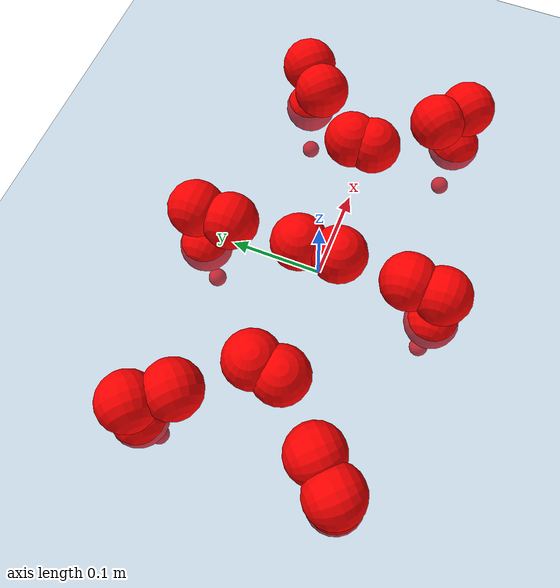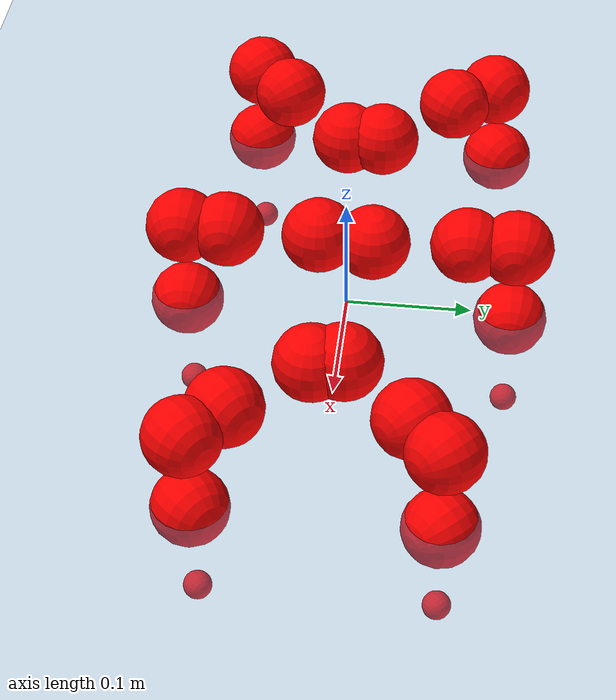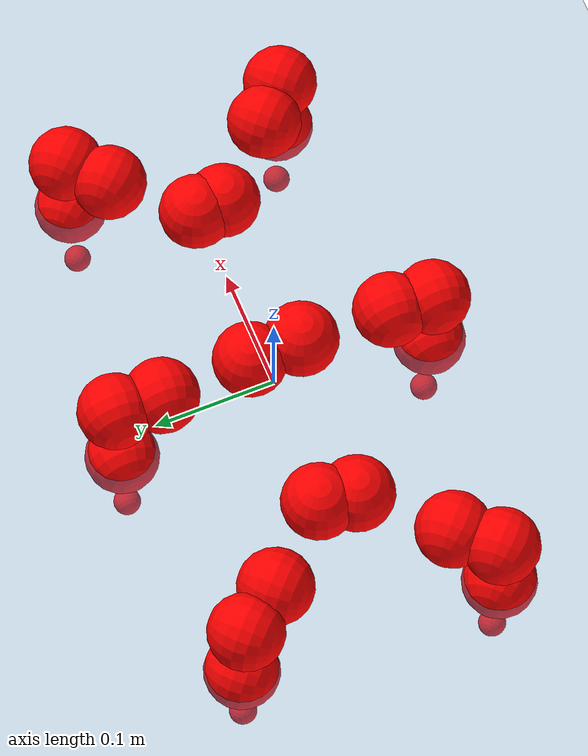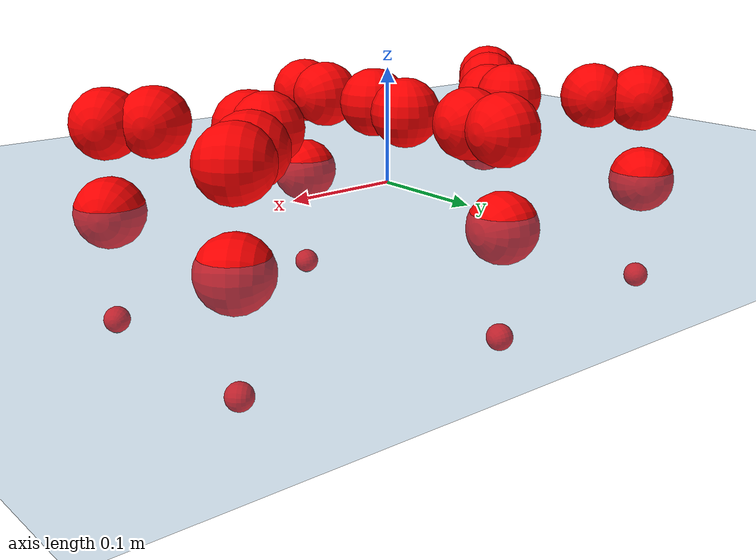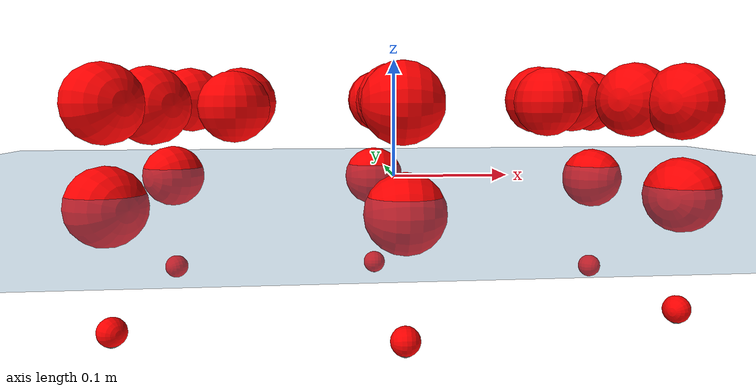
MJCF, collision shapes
<mujoco model="Golem">
  <compiler angle="radian" assetdir="assets" balanceinertia="true" inertiafromgeom="false"/>

  <option timestep="0.005" density="1.2" viscosity="2e-05"/>

  <size nkey="1"/>

  <visual>
    <quality shadowsize="8192"/>
    <map shadowclip="0.5"/>
  </visual>

  <default>
    <default class="/">
      <joint armature="0.01" damping="0.01" frictionloss="0.01"/>
      <geom contype="0" conaffinity="0" group="1" solref="-1000 -80"/>
      <site size="0.01 0.005 0.005" group="5"/>
      <general forcelimited="true" biastype="affine" gainprm="25" biasprm="0 -25 -0.5"/>
      <default class="visual">
        <geom type="mesh" group="2"/>
      </default>
      <default class="collision">
        <geom group="3"/>
      </default>
      <default class="foot">
        <geom size="0.01 0 0" condim="6" group="4" priority="1" solimp="0.015 1 0.01"/>
      </default>
      <default class="reward_collision_sphere">
        <geom group="5" rgba="1 0 0 1"/>
      </default>
    </default>
  </default>

  <asset>
    <texture type="skybox" colorspace="auto" name="//unnamed_texture_0" builtin="gradient" rgb1="0.95 0.95 0.95" rgb2="0.95 0.95 0.95" width="100" height="600"/>
    <texture type="2d" colorspace="auto" name="texplane" builtin="checker" rgb1="0.345 0.575 0.748" rgb2="0.345 0.575 0.748" markrgb="1 1 1" width="512" height="512"/>
    <material name="MatPlane" class="/" texture="texplane" texuniform="true" texrepeat="2 2" specular="0.9"/>
    <mesh name="body" class="/" file="body.stl" scale="0.001 0.001 0.001"/>
    <mesh name="coxa" class="/" file="coxa.stl" scale="0.001 0.001 0.001"/>
    <mesh name="femur" class="/" file="femur.stl" scale="0.001 0.001 0.001"/>
    <mesh name="tibia" class="/" file="tibia.stl" scale="0.001 0.001 0.001"/>
    <mesh name="tarsus" class="/" file="tarsus.stl" scale="0.001 0.001 0.001"/>
  </asset>

  <worldbody>
    <geom name="floor" class="/" size="100 100 0.125" type="plane" group="0" material="MatPlane"/>
    <light name="toplight_shadow" class="/" pos="0 0 5" dir="0.0990148 0.0990148 -0.990148" type="directional" ambient="0.04 0.04 0.04" diffuse="0.55 0.55 0.55" specular="0.12 0.12 0.12"/>
    <light name="toplight_fill" class="/" pos="0 0 5" dir="0.0990148 0.0990148 -0.990148" type="directional" castshadow="false" ambient="0.04 0.04 0.04" diffuse="0.3 0.3 0.3" specular="0.08 0.08 0.08"/>
    <body name="trunk" pos="0.000495753 -0.000461045 0.000991305" quat="1 0.000259607 -0.000170622 -4.19563e-05">
      <inertial pos="0.00232067 0.000109731 -0.00224071" quat="0.999999 -0.000192814 0.00101235 -0.000941852" mass="1.51445" diaginertia="0.00462805 6.09249e-05 0.0100621"/>
      <joint name="//unnamed_joint_0" type="free"/>
      <geom name="//unnamed_geom_1" class="/" pos="0 0 0.0639375" quat="1 0 0 0" type="mesh" rgba="0.9 0.9 0.9 1" mesh="body"/>
      <site name="imu" class="/" pos="0.117066 -0.0141952 0.101057" size="0.00739544"/>
      <camera name="track" class="/" pos="0 -0.726512 0" quat="0.707107 0.707107 0 0" mode="trackcom"/>
      <camera name="ego_camera" class="/" pos="0.111326 0 0.0999023" quat="-0.5 -0.5 0.5 0.5"/>
      <body name="coxa_RR" pos="-0.152975 -0.0308192 0.0595353" quat="0.382737 -0.000176254 -0.000276913 -0.923857">
        <inertial pos="-0.000719914 0.000707326 0.00247773" quat="0.999902 -0.00554695 0.0110263 0.00656408" mass="0.0826474" diaginertia="0.00471389 6.47869e-05 0.0103435"/>
        <joint name="coxa_joint_RR" class="/" pos="0 0 0" axis="-0.00105073 0.00250331 -0.999996" stiffness="0.000281036" range="-3.18766 3.10752" armature="0.00749296" damping="0.00328203" frictionloss="0.00844625"/>
        <geom name="//unnamed_geom_2" class="/" type="mesh" rgba="0.2 0.2 0.2 1" mesh="coxa"/>
        <geom name="//unnamed_geom_3" class="reward_collision_sphere" size="0.0295818" pos="-0.0256906 0 0"/>
        <body name="femur_RR" pos="0.0520869 0.000341439 0.0016908" quat="0.500018 -0.499977 0.499986 0.500018">
          <inertial pos="0.000309872 0.000251267 -0.000775099" quat="0.999987 0.000945098 -0.00191222 0.00471127" mass="0.0804027" diaginertia="0.0047912 6.58925e-05 0.00980014"/>
          <joint name="femur_joint_RR" class="/" pos="0 0 0" axis="-0.00893541 0.0102922 -0.999907" stiffness="0.000569035" range="-3.10739 3.12225" armature="0.00666608" damping="0" frictionloss="0.00676492"/>
          <geom name="//unnamed_geom_4" class="/" type="mesh" rgba="0.9 0.9 0.9 1" mesh="femur"/>
          <geom name="//unnamed_geom_5" class="reward_collision_sphere" size="0.0295818"/>
          <body name="tibia_RR" pos="-0.00162058 -0.0383816 0.000913235" quat="0.00103421 0.999999 0.000185427 0.000780086">
            <inertial pos="0.00246014 0.00285387 -0.000492691" quat="0.999987 -0.0014883 -0.0046602 0.0012438" mass="0.0833186" diaginertia="0.00450366 6.29082e-05 0.00969883"/>
            <joint name="tibia_joint_RR" class="/" pos="0 0 0" axis="0.00662391 -0.00319709 0.999973" stiffness="0.00604864" range="-3.11183 3.12101" armature="0.0066075" damping="0.00265998" frictionloss="0.00744497"/>
            <geom name="//unnamed_geom_6" class="/" type="mesh" rgba="0.2 0.2 0.2 1" mesh="tibia"/>
            <geom name="//unnamed_geom_7" class="reward_collision_sphere" size="0.0295818"/>
            <body name="tarsus_RR" pos="0.0734133 0.00213969 -0.00175788" quat="0.999999 0.000281791 -0.00104963 0.000389762">
              <inertial pos="0.0494186 0.000551844 -2.95846e-05" quat="0.501015 0.50208 0.497616 0.499278" mass="0.0845434" diaginertia="0.00492318 6.31859e-05 0.0106694"/>
              <joint name="tarsus_joint_RR" class="/" pos="0 0 0" axis="-0.010897 -0.00156771 0.999939" stiffness="0.00214754" range="-3.19283 3.14207" armature="0.00700525" damping="0.00568498" frictionloss="0.00747971"/>
              <geom name="//unnamed_geom_8" class="/" type="mesh" rgba="0.9 0.9 0.9 1" mesh="tarsus"/>
              <geom name="foot_1" class="foot" size="0.00780564" pos="0.0959115 0 0" quat="0 -0.707107 0 0.707107"/>
              <geom name="//unnamed_geom_10" class="reward_collision_sphere" size="0.0295818"/>
              <geom name="//unnamed_geom_11" class="reward_collision_sphere" size="0.0110932" pos="0.0920579 0 0"/>
              <site name="foot_1" class="foot" pos="0.0959115 0 0" quat="0 -0.707107 0 0.707107" size="0.00739544"/>
            </body>
          </body>
        </body>
      </body>
      <body name="coxa_RM" pos="-0.00291403 -0.0469347 0.0665313" quat="0.707014 0.000755092 -0.000317649 -0.707199">
        <inertial pos="0.00276906 -0.00181833 0.00271823" quat="0.999987 -0.000899563 -0.00496727 -7.34413e-05" mass="0.0775333" diaginertia="0.0044505 6.28972e-05 0.00985069"/>
        <joint name="coxa_joint_RM" class="/" pos="0 0 0" axis="-0.00859602 0.00350629 -0.999957" range="-3.14756 3.18366" armature="0.00769363" damping="0.0072555" frictionloss="0.00640698"/>
        <geom name="//unnamed_geom_12" class="/" type="mesh" rgba="0.2 0.2 0.2 1" mesh="coxa"/>
        <geom name="//unnamed_geom_13" class="reward_collision_sphere" size="0.0295818" pos="-0.0256906 0 0"/>
        <body name="femur_RM" pos="0.0476606 -0.00178819 -0.00213855" quat="0.499996 -0.500031 0.499876 0.500097">
          <inertial pos="0.00284091 0.00088133 -0.000567053" quat="0.999988 0.00122734 -0.00381307 -0.00266687" mass="0.0861916" diaginertia="0.00468483 6.32524e-05 0.00994663"/>
          <joint name="femur_joint_RM" class="/" pos="0 0 0" axis="0.00492299 0.00880785 -0.999949" range="-3.195 3.15551" armature="0.0076338" damping="0.0222533" frictionloss="0.00841688"/>
          <geom name="//unnamed_geom_14" class="/" type="mesh" rgba="0.9 0.9 0.9 1" mesh="femur"/>
          <geom name="//unnamed_geom_15" class="reward_collision_sphere" size="0.0295818"/>
          <body name="tibia_RM" pos="0.000989682 -0.0351334 -0.00202063" quat="0.000259381 1 -8.64213e-05 -0.000134343">
            <inertial pos="0.0023638 -0.00322977 -0.00187261" quat="0.999945 0.000445995 0.0100658 -0.00298241" mass="0.0812587" diaginertia="0.00466257 6.19041e-05 0.0101409"/>
            <joint name="tibia_joint_RM" class="/" pos="0 0 0" axis="-0.00107048 0.0047989 0.999988" range="-3.13407 3.08951" armature="0.00795013" damping="0.0203737" frictionloss="0.00772636"/>
            <geom name="//unnamed_geom_16" class="/" type="mesh" rgba="0.2 0.2 0.2 1" mesh="tibia"/>
            <geom name="//unnamed_geom_17" class="reward_collision_sphere" size="0.0295818"/>
            <body name="tarsus_RM" pos="0.0772937 0.000766906 -0.00147578" quat="1 0.000340432 0.000307558 0.00014305">
              <inertial pos="0.0545417 -0.00139599 0.000880093" quat="0.492115 0.50447 0.508736 0.49449" mass="0.081483" diaginertia="0.00477006 6.53349e-05 0.0096214"/>
              <joint name="tarsus_joint_RM" class="/" pos="0 0 0" axis="-0.000600473 0.00166974 0.999998" stiffness="0.00428761" range="-3.11248 3.19393" armature="0.00763547" damping="0.0101236" frictionloss="0.00702078"/>
              <geom name="//unnamed_geom_18" class="/" type="mesh" rgba="0.9 0.9 0.9 1" mesh="tarsus"/>
              <geom name="foot_2" class="foot" size="0.00784714" pos="0.0959115 0 0" quat="0 -0.707107 0 0.707107"/>
              <geom name="//unnamed_geom_20" class="reward_collision_sphere" size="0.0295818"/>
              <geom name="//unnamed_geom_21" class="reward_collision_sphere" size="0.0110932" pos="0.0920579 0 0"/>
              <site name="foot_2" class="foot" pos="0.0959115 0 0" quat="0 -0.707107 0 0.707107" size="0.00739544"/>
            </body>
          </body>
        </body>
      </body>
      <body name="coxa_RF" pos="0.150906 -0.0287526 0.0633538" quat="0.923809 0.000354626 -3.32556e-05 -0.382855">
        <inertial pos="-0.00249858 -0.000427907 0.00322018" quat="0.999911 -0.00832576 -0.00901491 -0.0053294" mass="0.0798003" diaginertia="0.00479237 6.4052e-05 0.0100106"/>
        <joint name="coxa_joint_RF" class="/" pos="0 0 0" axis="0.00499819 -0.00341527 -0.999982" range="-3.18988 3.16998" armature="0.00637375" damping="0.01971" frictionloss="0.00759925"/>
        <geom name="//unnamed_geom_22" class="/" type="mesh" rgba="0.2 0.2 0.2 1" mesh="coxa"/>
        <geom name="//unnamed_geom_23" class="reward_collision_sphere" size="0.0295818" pos="-0.0256906 0 0"/>
        <body name="femur_RF" pos="0.0510435 -0.00245998 0.00192783" quat="0.500683 -0.499774 0.500018 0.499524">
          <inertial pos="-0.000776282 -0.00267255 0.00163206" quat="0.999978 0.00641489 -0.00172736 0.000898266" mass="0.0796997" diaginertia="0.00443583 6.21416e-05 0.00985728"/>
          <joint name="femur_joint_RF" class="/" pos="0 0 0" axis="-0.00780902 0.00609401 -0.999951" range="-3.0853 3.13582" armature="0.00754716" damping="0" frictionloss="0.0067767"/>
          <geom name="//unnamed_geom_24" class="/" type="mesh" rgba="0.9 0.9 0.9 1" mesh="femur"/>
          <geom name="//unnamed_geom_25" class="reward_collision_sphere" size="0.0295818"/>
          <body name="tibia_RF" pos="0.00142622 -0.0386177 0.00286042" quat="-0.000681535 0.999999 -0.000400343 0.00109245">
            <inertial pos="0.000978633 0.0029923 -0.00228179" quat="0.999905 -0.00681491 0.0047323 -0.0110349" mass="0.081775" diaginertia="0.00465958 6.22396e-05 0.00969558"/>
            <joint name="tibia_joint_RF" class="/" pos="0 0 0" axis="-0.00919632 -0.00209194 0.999956" stiffness="0.00690908" range="-3.15352 3.13998" armature="0.00662346" damping="0.00264468" frictionloss="0.00739494"/>
            <geom name="//unnamed_geom_26" class="/" type="mesh" rgba="0.2 0.2 0.2 1" mesh="tibia"/>
            <geom name="//unnamed_geom_27" class="reward_collision_sphere" size="0.0295818"/>
            <body name="tarsus_RF" pos="0.0726436 0.000364886 -0.0027236" quat="1 -0.000587443 -0.000238508 -0.0005987">
              <inertial pos="0.0500532 0.00031748 0.000767367" quat="0.49396 0.509702 0.502018 0.494151" mass="0.0765977" diaginertia="0.00461309 6.22742e-05 0.00964076"/>
              <joint name="tarsus_joint_RF" class="/" pos="0 0 0" axis="-0.00659986 -0.00227001 0.999976" range="-3.1136 3.16129" armature="0.00738542" damping="0.0134639" frictionloss="0.00841817"/>
              <geom name="//unnamed_geom_28" class="/" type="mesh" rgba="0.9 0.9 0.9 1" mesh="tarsus"/>
              <geom name="foot_3" class="foot" size="0.00781089" pos="0.0959115 0 0" quat="0 -0.707107 0 0.707107"/>
              <geom name="//unnamed_geom_30" class="reward_collision_sphere" size="0.0295818"/>
              <geom name="//unnamed_geom_31" class="reward_collision_sphere" size="0.0110932" pos="0.0920579 0 0"/>
              <site name="foot_3" class="foot" pos="0.0959115 0 0" quat="0 -0.707107 0 0.707107" size="0.00739544"/>
            </body>
          </body>
        </body>
      </body>
      <body name="coxa_LR" pos="-0.14966 0.0351088 0.063188" quat="0.383048 -0.000236526 -0.000801839 0.923728">
        <inertial pos="0.00196165 -0.00145258 -0.00272441" quat="0.999922 -0.00787094 0.00408101 0.00879222" mass="0.0825931" diaginertia="0.00465464 6.43592e-05 0.0101271"/>
        <joint name="coxa_joint_LR" class="/" pos="0 0 0" axis="-0.00299585 -0.0041717 -0.999987" range="-3.15041 3.11951" armature="0.00648885" damping="0.00705089" frictionloss="0.00749863"/>
        <geom name="//unnamed_geom_32" class="/" type="mesh" rgba="0.2 0.2 0.2 1" mesh="coxa"/>
        <geom name="//unnamed_geom_33" class="reward_collision_sphere" size="0.0295818" pos="-0.0256906 0 0"/>
        <body name="femur_LR" pos="0.0507109 -0.00296112 0.00190399" quat="0.499991 -0.499476 0.499841 0.50069">
          <inertial pos="0.00216215 9.59202e-05 -0.00173949" quat="0.999999 -1.69135e-05 0.00156084 0.000654241" mass="0.0820155" diaginertia="0.00464916 6.38421e-05 0.0104058"/>
          <joint name="femur_joint_LR" class="/" pos="0 0 0" axis="0.00187994 0.00333943 0.999993" range="-3.08579 3.14997" armature="0.00791183" damping="0.00165172" frictionloss="0.00772031"/>
          <geom name="//unnamed_geom_34" class="/" type="mesh" rgba="0.9 0.9 0.9 1" mesh="femur"/>
          <geom name="//unnamed_geom_35" class="reward_collision_sphere" size="0.0295818"/>
          <body name="tibia_LR" pos="0.000654632 -0.0410167 -0.00621484" quat="-0.000151784 1 -0.000110887 8.99755e-05">
            <inertial pos="0.00211588 -0.00359764 0.00370358" quat="0.99998 0.000598871 -0.00128248 -0.00621625" mass="0.0778125" diaginertia="0.00458066 6.51656e-05 0.00991729"/>
            <joint name="tibia_joint_LR" class="/" pos="0 0 0" axis="0.00246937 -0.00155498 -0.999996" range="-3.10965 3.10026" armature="0.00689804" damping="0.0134844" frictionloss="0.00636523"/>
            <geom name="//unnamed_geom_36" class="/" type="mesh" rgba="0.2 0.2 0.2 1" mesh="tibia"/>
            <geom name="//unnamed_geom_37" class="reward_collision_sphere" size="0.0295818"/>
            <body name="tarsus_LR" pos="0.0744935 0.00510916 0.00209181" quat="1 -0.000223196 -0.000406445 0.00036199">
              <inertial pos="0.0504736 -0.0017299 -0.000338221" quat="0.500785 0.498991 0.503108 0.497097" mass="0.0820346" diaginertia="0.00465539 6.18963e-05 0.00995196"/>
              <joint name="tarsus_joint_LR" class="/" pos="0 0 0" axis="0.00761238 0.00604509 -0.999953" range="-3.10848 3.13259" armature="0.00761488" damping="0.00942724" frictionloss="0.00728255"/>
              <geom name="//unnamed_geom_38" class="/" type="mesh" rgba="0.9 0.9 0.9 1" mesh="tarsus"/>
              <geom name="foot_4" class="foot" size="0.00686709" pos="0.0959115 0 0" quat="0.707107 0 -0.707107 0"/>
              <geom name="//unnamed_geom_40" class="reward_collision_sphere" size="0.0295818"/>
              <geom name="//unnamed_geom_41" class="reward_collision_sphere" size="0.0110932" pos="0.0920579 0 0"/>
              <site name="foot_4" class="foot" pos="0.0959115 0 0" quat="0.707107 0 -0.707107 0" size="0.00739544"/>
            </body>
          </body>
        </body>
      </body>
      <body name="coxa_LM" pos="-0.00277403 0.0466621 0.0631034" quat="0.707076 -0.000214639 -0.000168597 0.707137">
        <inertial pos="-0.00198223 6.03288e-05 0.00301164" quat="0.999993 0.00280983 0.00156758 -0.00205318" mass="0.0793679" diaginertia="0.00468886 6.35335e-05 0.010339"/>
        <joint name="coxa_joint_LM" class="/" pos="0 0 0" axis="-0.00375147 0.00287042 -0.999989" stiffness="0.00357543" range="-3.18577 3.13035" armature="0.00628428" damping="0.00988605" frictionloss="0.00830037"/>
        <geom name="//unnamed_geom_42" class="/" type="mesh" rgba="0.2 0.2 0.2 1" mesh="coxa"/>
        <geom name="//unnamed_geom_43" class="reward_collision_sphere" size="0.0295818" pos="-0.0256906 0 0"/>
        <body name="femur_LM" pos="0.0482508 0.00332465 0.000841171" quat="0.499652 -0.499867 0.500296 0.500185">
          <inertial pos="-0.000337007 -0.00275098 -0.000649805" quat="0.999899 0.0135706 0.000731987 0.00411297" mass="0.0771339" diaginertia="0.00445184 6.18038e-05 0.00970138"/>
          <joint name="femur_joint_LM" class="/" pos="0 0 0" axis="0.00826509 0.0121747 0.999892" stiffness="0.00716671" range="-3.12022 3.15819" armature="0.00632345" damping="0.0131775" frictionloss="0.00843857"/>
          <geom name="//unnamed_geom_44" class="/" type="mesh" rgba="0.9 0.9 0.9 1" mesh="femur"/>
          <geom name="//unnamed_geom_45" class="reward_collision_sphere" size="0.0295818"/>
          <body name="tibia_LM" pos="-0.00084814 -0.0376645 -0.000542164" quat="1.50394e-05 1 -5.49355e-05 7.07569e-05">
            <inertial pos="-0.00117642 0.00045031 -0.00071261" quat="1 -0.00010374 8.26653e-05 -0.000138748" mass="0.0838218" diaginertia="0.00449707 6.30977e-05 0.00988995"/>
            <joint name="tibia_joint_LM" class="/" pos="0 0 0" axis="-0.000503076 0.00443361 -0.99999" range="-3.08732 3.13915" armature="0.00734667" damping="0" frictionloss="0.00634978"/>
            <geom name="//unnamed_geom_46" class="/" type="mesh" rgba="0.2 0.2 0.2 1" mesh="tibia"/>
            <geom name="//unnamed_geom_47" class="reward_collision_sphere" size="0.0295818"/>
            <body name="tarsus_LM" pos="0.0791143 -0.000600952 -0.00338587" quat="1 5.46411e-05 -0.000559681 0.000304448">
              <inertial pos="0.0488688 -0.00112435 -0.000242143" quat="0.498925 0.500597 0.497727 0.502737" mass="0.0779835" diaginertia="0.00455014 6.31906e-05 0.0102343"/>
              <joint name="tarsus_joint_LM" class="/" pos="0 0 0" axis="0.00809764 -0.00790032 -0.999936" range="-3.11079 3.08522" armature="0.00746817" damping="0.00852834" frictionloss="0.00653176"/>
              <geom name="//unnamed_geom_48" class="/" type="mesh" rgba="0.9 0.9 0.9 1" mesh="tarsus"/>
              <geom name="foot_5" class="foot" size="0.0074024" pos="0.0959115 0 0" quat="0.707107 0 -0.707107 0"/>
              <geom name="//unnamed_geom_50" class="reward_collision_sphere" size="0.0295818"/>
              <geom name="//unnamed_geom_51" class="reward_collision_sphere" size="0.0110932" pos="0.0920579 0 0"/>
              <site name="foot_5" class="foot" pos="0.0959115 0 0" quat="0.707107 0 -0.707107 0" size="0.00739544"/>
            </body>
          </body>
        </body>
      </body>
      <body name="coxa_LF" pos="0.149028 0.0309882 0.0649243" quat="0.923703 0.00026542 0.00123518 0.383108">
        <inertial pos="0.000785898 -0.00256496 0.00039571" quat="0.999987 -0.00407512 0.00248154 0.00178205" mass="0.0777676" diaginertia="0.00446903 5.96363e-05 0.00958045"/>
        <joint name="coxa_joint_LF" class="/" pos="0 0 0" axis="0.000319957 -0.000313843 -1" range="-3.19454 3.09629" armature="0.00770287" damping="0.000594093" frictionloss="0.00842125"/>
        <geom name="//unnamed_geom_52" class="/" type="mesh" rgba="0.2 0.2 0.2 1" mesh="coxa"/>
        <geom name="//unnamed_geom_53" class="reward_collision_sphere" size="0.0295818" pos="-0.0256906 0 0"/>
        <body name="femur_LF" pos="0.0476975 0.00230178 -0.00106796" quat="0.499687 -0.501314 0.499612 0.499386">
          <inertial pos="0.000850447 -0.000745083 0.000416895" quat="0.999993 -0.00336544 0.000262346 0.00181966" mass="0.080764" diaginertia="0.00449964 6.1801e-05 0.00957621"/>
          <joint name="femur_joint_LF" class="/" pos="0 0 0" axis="0.0150505 -0.00481886 0.999875" range="-3.16007 3.08664" armature="0.00775234" damping="0.0138107" frictionloss="0.00720356"/>
          <geom name="//unnamed_geom_54" class="/" type="mesh" rgba="0.9 0.9 0.9 1" mesh="femur"/>
          <geom name="//unnamed_geom_55" class="reward_collision_sphere" size="0.0295818"/>
          <body name="tibia_LF" pos="0.00064523 -0.0386069 -0.00231475" quat="7.05792e-05 1 -5.27207e-05 2.37262e-05">
            <inertial pos="0.000473708 0.000379546 -0.00104544" quat="0.999906 -0.00398573 -0.0102679 -0.00818891" mass="0.0838493" diaginertia="0.00451579 6.11491e-05 0.00961583"/>
            <joint name="tibia_joint_LF" class="/" pos="0 0 0" axis="0.00153069 0.0154209 -0.99988" stiffness="0.00804354" range="-3.15911 3.11795" armature="0.0085032" damping="0.0110692" frictionloss="0.00636487"/>
            <geom name="//unnamed_geom_56" class="/" type="mesh" rgba="0.2 0.2 0.2 1" mesh="tibia"/>
            <geom name="//unnamed_geom_57" class="reward_collision_sphere" size="0.0295818"/>
            <body name="tarsus_LF" pos="0.0777835 0.00162656 0.00215426" quat="1 -1.17345e-05 -0.000292891 -1.20434e-05">
              <inertial pos="0.0495236 0.00116564 0.00104592" quat="0.50049 0.501069 0.500626 0.497808" mass="0.0782608" diaginertia="0.00456969 6.13713e-05 0.00956925"/>
              <joint name="tarsus_joint_LF" class="/" pos="0 0 0" axis="0.0134224 0.00213764 -0.999908" stiffness="0.0270375" range="-3.1367 3.19514" armature="0.00758829" damping="0.0261568" frictionloss="0.00721151"/>
              <geom name="//unnamed_geom_58" class="/" type="mesh" rgba="0.9 0.9 0.9 1" mesh="tarsus"/>
              <geom name="foot_6" class="foot" size="0.0072541" pos="0.0959115 0 0" quat="0.707107 0 -0.707107 0"/>
              <geom name="//unnamed_geom_60" class="reward_collision_sphere" size="0.0295818"/>
              <geom name="//unnamed_geom_61" class="reward_collision_sphere" size="0.0110932" pos="0.0920579 0 0"/>
              <site name="foot_6" class="foot" pos="0.0959115 0 0" quat="0.707107 0 -0.707107 0" size="0.00739544"/>
            </body>
          </body>
        </body>
      </body>
    </body>
  </worldbody>

  <contact>
    <pair class="/" geom1="floor" geom2="foot_1" name="//unnamed_contact_0"/>
    <pair class="/" geom1="floor" geom2="foot_2" name="//unnamed_contact_1"/>
    <pair class="/" geom1="floor" geom2="foot_3" name="//unnamed_contact_2"/>
    <pair class="/" geom1="floor" geom2="foot_4" name="//unnamed_contact_3"/>
    <pair class="/" geom1="floor" geom2="foot_5" name="//unnamed_contact_4"/>
    <pair class="/" geom1="floor" geom2="foot_6" name="//unnamed_contact_5"/>
  </contact>

  <actuator>
    <general name="coxa_joint_RR" class="/" joint="coxa_joint_RR" forcerange="-5.94032 5.94032" gainprm="17.9267" biasprm="0 -17.9267 -0.367629"/>
    <general name="femur_joint_RR" class="/" joint="femur_joint_RR" forcerange="-5.90562 5.90562" gainprm="17.9267" biasprm="0 -17.9267 -0.367629"/>
    <general name="tibia_joint_RR" class="/" joint="tibia_joint_RR" forcerange="-5.19701 5.19701" gainprm="17.9267" biasprm="0 -17.9267 -0.367629"/>
    <general name="tarsus_joint_RR" class="/" joint="tarsus_joint_RR" forcerange="-5.46422 5.46422" gainprm="17.9267" biasprm="0 -17.9267 -0.367629"/>
    <general name="coxa_joint_RM" class="/" joint="coxa_joint_RM" forcerange="-5.9323 5.9323" gainprm="17.9267" biasprm="0 -17.9267 -0.367629"/>
    <general name="femur_joint_RM" class="/" joint="femur_joint_RM" forcerange="-5.85271 5.85271" gainprm="17.9267" biasprm="0 -17.9267 -0.367629"/>
    <general name="tibia_joint_RM" class="/" joint="tibia_joint_RM" forcerange="-4.87687 4.87687" gainprm="17.9267" biasprm="0 -17.9267 -0.367629"/>
    <general name="tarsus_joint_RM" class="/" joint="tarsus_joint_RM" forcerange="-5.5899 5.5899" gainprm="17.9267" biasprm="0 -17.9267 -0.367629"/>
    <general name="coxa_joint_RF" class="/" joint="coxa_joint_RF" forcerange="-5.74695 5.74695" gainprm="17.9267" biasprm="0 -17.9267 -0.367629"/>
    <general name="femur_joint_RF" class="/" joint="femur_joint_RF" forcerange="-5.05737 5.05737" gainprm="17.9267" biasprm="0 -17.9267 -0.367629"/>
    <general name="tibia_joint_RF" class="/" joint="tibia_joint_RF" forcerange="-4.90729 4.90729" gainprm="17.9267" biasprm="0 -17.9267 -0.367629"/>
    <general name="tarsus_joint_RF" class="/" joint="tarsus_joint_RF" forcerange="-5.18804 5.18804" gainprm="17.9267" biasprm="0 -17.9267 -0.367629"/>
    <general name="coxa_joint_LR" class="/" joint="coxa_joint_LR" forcerange="-5.95081 5.95081" gainprm="17.9267" biasprm="0 -17.9267 -0.367629"/>
    <general name="femur_joint_LR" class="/" joint="femur_joint_LR" forcerange="-4.84387 4.84387" gainprm="17.9267" biasprm="0 -17.9267 -0.367629"/>
    <general name="tibia_joint_LR" class="/" joint="tibia_joint_LR" forcerange="-4.89183 4.89183" gainprm="17.9267" biasprm="0 -17.9267 -0.367629"/>
    <general name="tarsus_joint_LR" class="/" joint="tarsus_joint_LR" forcerange="-5.51231 5.51231" gainprm="17.9267" biasprm="0 -17.9267 -0.367629"/>
    <general name="coxa_joint_LM" class="/" joint="coxa_joint_LM" forcerange="-5.39858 5.39858" gainprm="17.9267" biasprm="0 -17.9267 -0.367629"/>
    <general name="femur_joint_LM" class="/" joint="femur_joint_LM" forcerange="-5.35744 5.35744" gainprm="17.9267" biasprm="0 -17.9267 -0.367629"/>
    <general name="tibia_joint_LM" class="/" joint="tibia_joint_LM" forcerange="-5.1971 5.1971" gainprm="17.9267" biasprm="0 -17.9267 -0.367629"/>
    <general name="tarsus_joint_LM" class="/" joint="tarsus_joint_LM" forcerange="-5.36633 5.36633" gainprm="17.9267" biasprm="0 -17.9267 -0.367629"/>
    <general name="coxa_joint_LF" class="/" joint="coxa_joint_LF" forcerange="-5.84401 5.84401" gainprm="17.9267" biasprm="0 -17.9267 -0.367629"/>
    <general name="femur_joint_LF" class="/" joint="femur_joint_LF" forcerange="-5.81442 5.81442" gainprm="17.9267" biasprm="0 -17.9267 -0.367629"/>
    <general name="tibia_joint_LF" class="/" joint="tibia_joint_LF" forcerange="-5.44414 5.44414" gainprm="17.9267" biasprm="0 -17.9267 -0.367629"/>
    <general name="tarsus_joint_LF" class="/" joint="tarsus_joint_LF" forcerange="-5.12209 5.12209" gainprm="17.9267" biasprm="0 -17.9267 -0.367629"/>
  </actuator>

  <sensor>
    <gyro site="imu" name="imu_angular_velocity"/>
    <velocimeter site="imu" name="imu_linear_velocity"/>
    <framelinvel objtype="site" objname="foot_1" name="foot_1_global_linear_velocity"/>
    <framelinvel objtype="site" objname="foot_2" name="foot_2_global_linear_velocity"/>
    <framelinvel objtype="site" objname="foot_3" name="foot_3_global_linear_velocity"/>
    <framelinvel objtype="site" objname="foot_4" name="foot_4_global_linear_velocity"/>
    <framelinvel objtype="site" objname="foot_5" name="foot_5_global_linear_velocity"/>
    <framelinvel objtype="site" objname="foot_6" name="foot_6_global_linear_velocity"/>
  </sensor>

  <keyframe>
    <key name="home" qpos="0 0 0.1457 1 0 0 0 0 0 0 0 0 0 0 0 0 0 0 0 0 0 0 0 0 0 0 0 0 0 0 0"/>
  </keyframe>
</mujoco>
